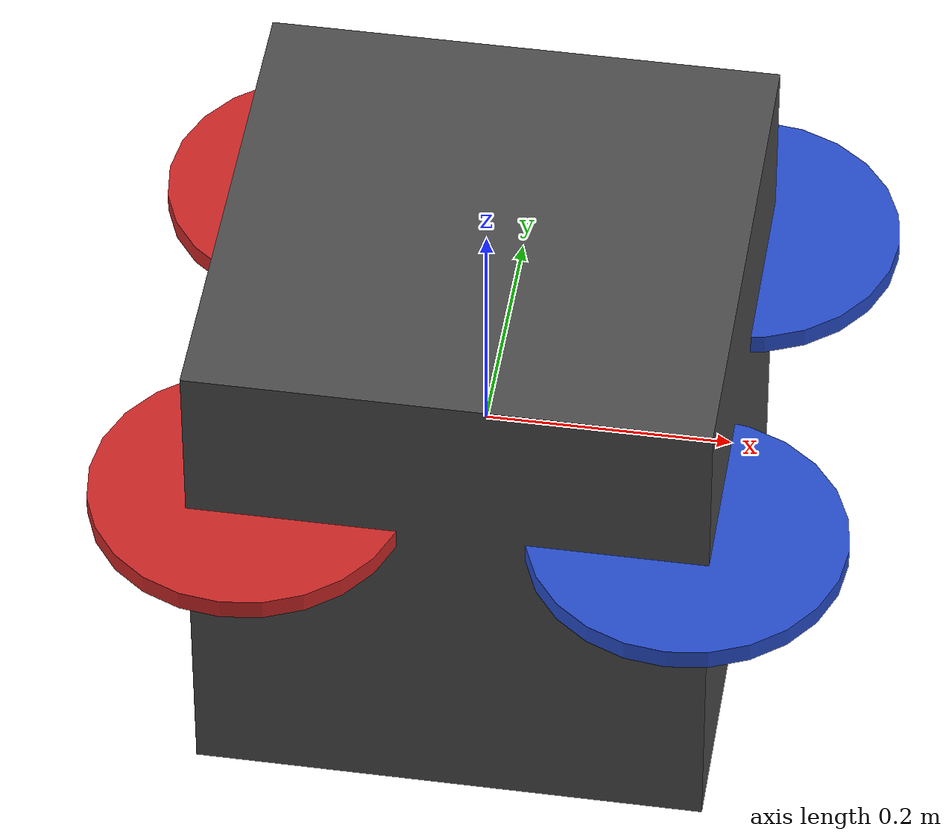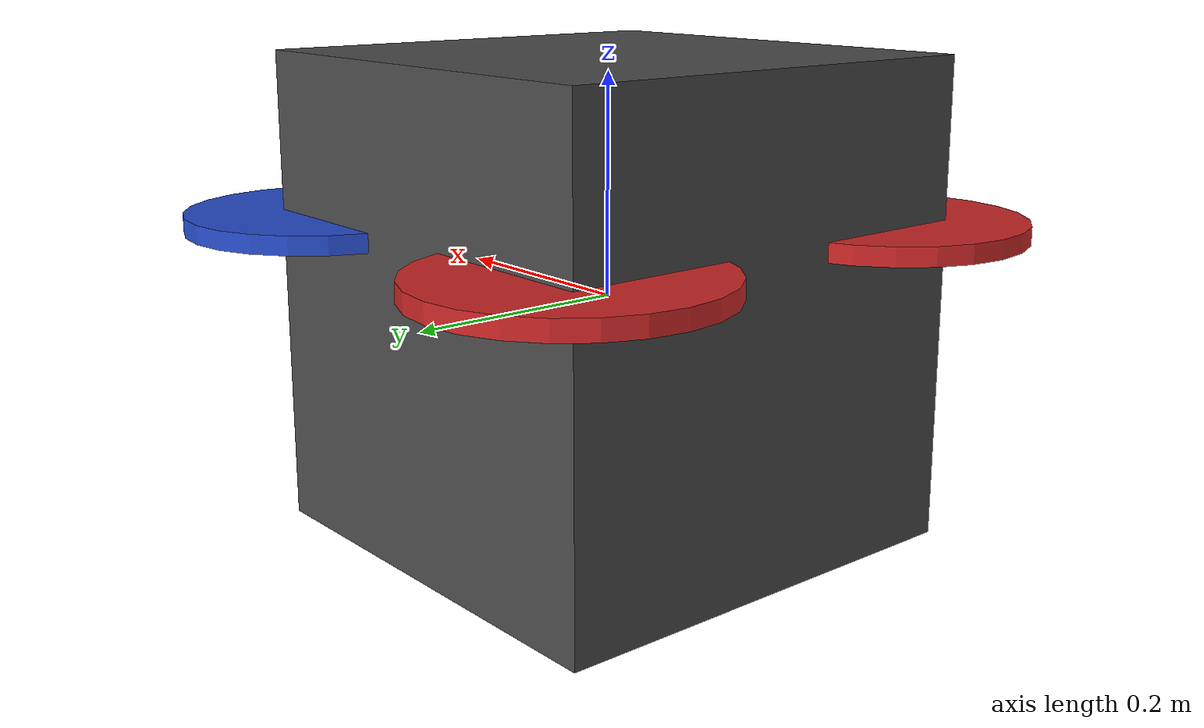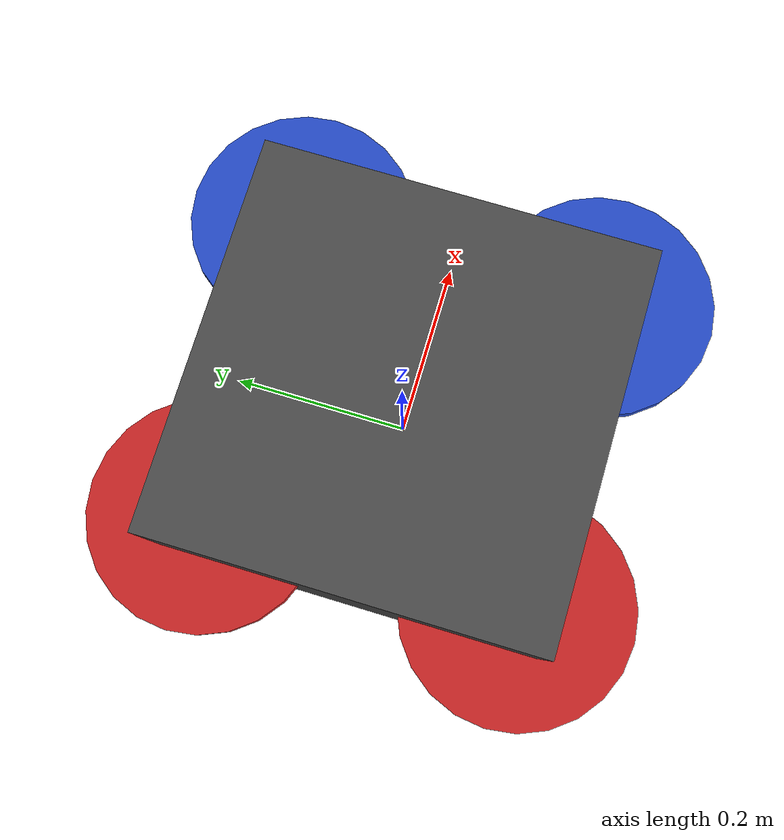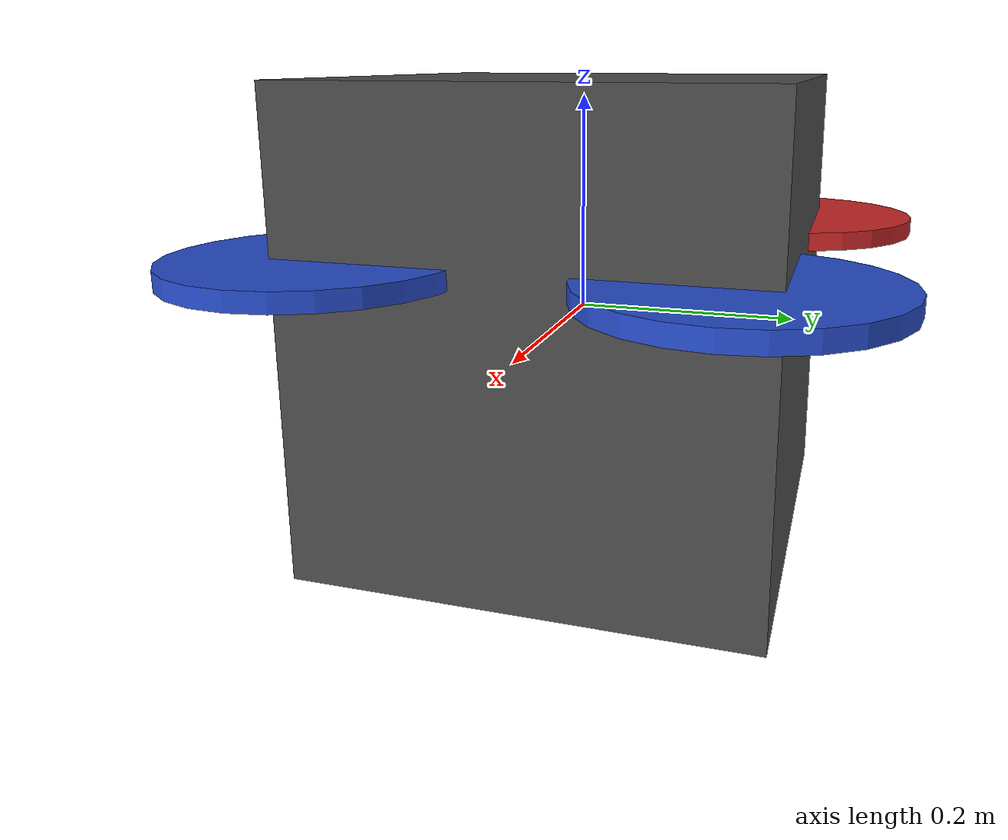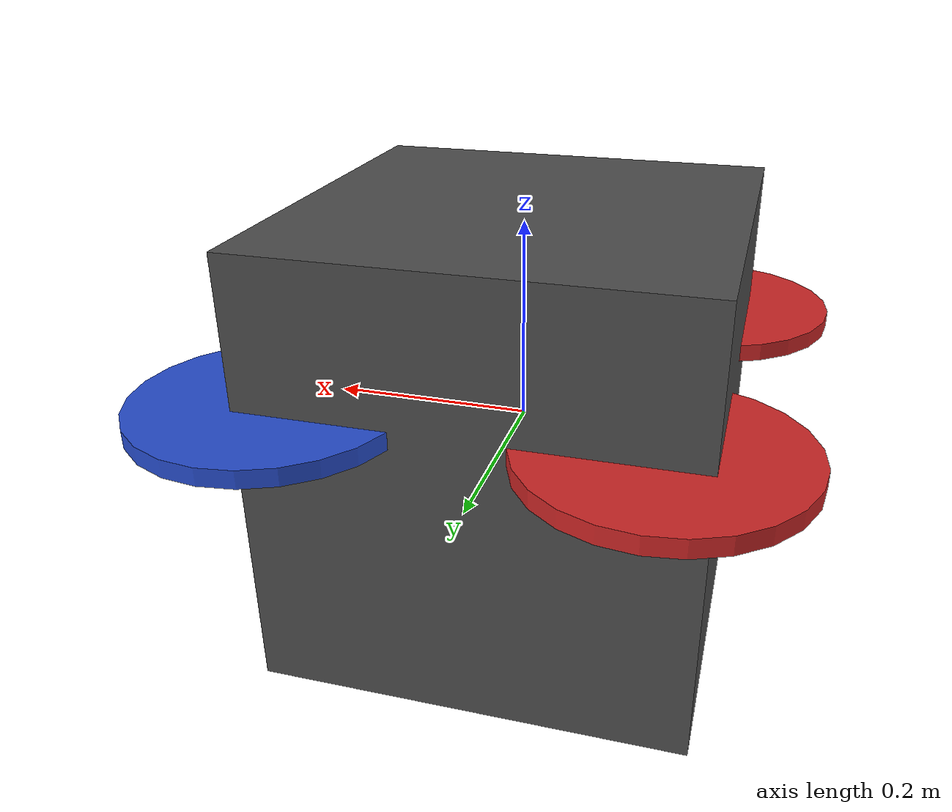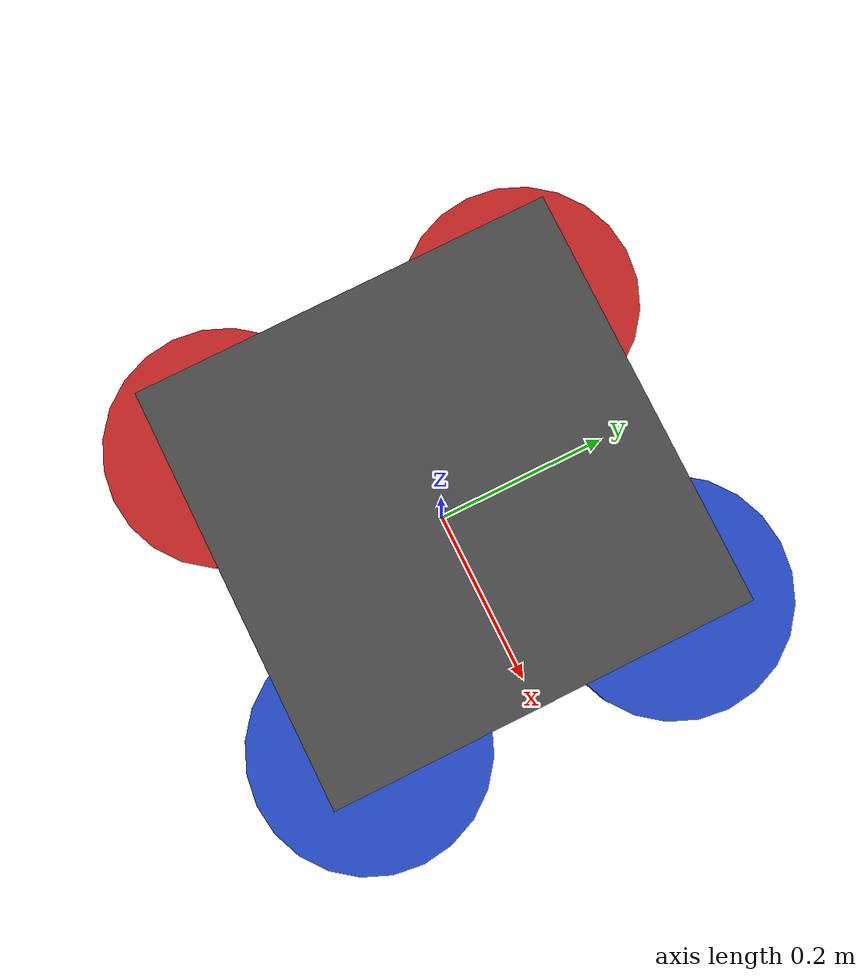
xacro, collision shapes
<?xml version="1.0"?>
<robot xmlns:xacro="http://www.ros.org/wiki/xacro" name="px4_drone">

  <!-- Base Link -->
  <link name="base_link">
    <inertial>
      <origin xyz="0 0 0" rpy="0 0 0"/>
      <mass value="1.449"/>
      <inertia ixx="0.020" ixy="0" ixz="0" iyy="0.02268" iyz="0" izz="0.03254"/>
    </inertial>
    <visual name="base_link_visual">
      <origin xyz="0 0 0" rpy="0 0 0"/>
      <geometry>
        <mesh filename="package://x500_drone_description/meshes/x500.stl" scale="0.001 0.001 0.001"/>
      </geometry>
      <material name="DarkGrey"/>
    </visual>
    <collision name="base_link_collision">
      <origin xyz="0 0 0" rpy="0 0 0"/>
      <geometry>
        <box size="0.416 0.416 0.433"/>
      </geometry>
    </collision>
  </link>

  <!-- IMU Link -->
  <link name="imu_link">
    <inertial>
      <origin xyz="0 0 0" rpy="0 0 0"/>
      <mass value="0.015"/>
      <inertia ixx="1e-05" ixy="0" ixz="0" iyy="1e-05" iyz="0" izz="1e-05"/>
    </inertial>
  </link>

  <!-- IMU Joint -->
  <joint name="imu_joint" type="revolute">
    <parent link="base_link"/>
    <child link="imu_link"/>
    <axis xyz="1 0 0"/>
    <limit lower="0" upper="0" effort="0" velocity="0"/>
  </joint>

  <!-- Rotor 0 -->
  <link name="rotor_0">
    <inertial>
      <origin xyz="0 0 0" rpy="0 0 0"/>
      <mass value="0.012392"/>
      <inertia ixx="8.4951e-7" ixy="4.04347e-7" ixz="0" iyy="0.00004116" iyz="0" izz="0.00004180"/>
    </inertial>
    <visual name="rotor_0_visual">
      <origin xyz="0 0 0" rpy="0 0 0"/>
      <geometry>
        <mesh filename="package://x500_drone_description/meshes/propeller_ccw.dae" scale="0.001 0.001 0.001"/>
      </geometry>
      <material name="Blue"/>
    </visual>
    <collision name="rotor_0_collision">
      <origin xyz="0 0 0" rpy="0 0 0"/>
      <geometry>
        <cylinder length="0.017" radius="0.128"/>
      </geometry>
    </collision>
  </link>

  <joint name="rotor_0_joint" type="continuous">
    <parent link="base_link"/>
    <child link="rotor_0"/>
    <origin xyz="0.186463 -0.17561 0.065374" rpy="0 0 0"/>
    <axis xyz="0 0 1"/>
  </joint>

  <!-- Rotor 1 -->
  <link name="rotor_1">
    <inertial>
      <origin xyz="0 0 0" rpy="0 0 0"/>
      <mass value="0.012392"/>
      <inertia ixx="8.4951e-7" ixy="4.04347e-7" ixz="0" iyy="0.00004116" iyz="0" izz="0.00004180"/>
    </inertial>
    <visual name="rotor_1_visual">
      <origin xyz="0 0 0" rpy="0 0 0"/>
      <geometry>
        <mesh filename="package://x500_drone_description/meshes/propeller_ccw.dae" scale="0.001 0.001 0.001"/>
      </geometry>
      <material name="Red"/>
    </visual>
    <collision name="rotor_1_collision">
      <origin xyz="0 0 0" rpy="0 0 0"/>
      <geometry>
        <cylinder length="0.017" radius="0.128"/>
      </geometry>
    </collision>
  </link>

  <joint name="rotor_1_joint" type="continuous">
    <parent link="base_link"/>
    <child link="rotor_1"/>
    <origin xyz="-0.163577 0.174408 0.065374" rpy="0 0 0"/>
    <axis xyz="0 0 1"/>
  </joint>

  <!-- Rotor 2 -->
  <link name="rotor_2">
    <inertial>
      <origin xyz="0 0 0" rpy="0 0 0"/>
      <mass value="0.012392"/>
      <inertia ixx="8.4951e-7" ixy="-4.04347e-7" ixz="0" iyy="0.00004116" iyz="0" izz="0.00004180"/>
    </inertial>
    <visual name="rotor_2_visual">
      <origin xyz="0 0 0" rpy="0 0 0"/>
      <geometry>
        <mesh filename="package://x500_drone_description/meshes/propeller_cw.dae" scale="0.001 0.001 0.001"/>
      </geometry>
      <material name="Blue"/>
    </visual>
    <collision name="rotor_2_collision">
      <origin xyz="0 0 0" rpy="0 0 0"/>
      <geometry>
        <cylinder length="0.017" radius="0.128"/>
      </geometry>
    </collision>
  </link>

  <joint name="rotor_2_joint" type="continuous">
    <parent link="base_link"/>
    <child link="rotor_2"/>
    <origin xyz="0.186463 0.174408 0.065374" rpy="0 0 0"/>
    <axis xyz="0 0 -1"/>
  </joint>

  <!-- Rotor 3 -->
  <link name="rotor_3">
    <inertial>
      <origin xyz="0 0 0" rpy="0 0 0"/>
      <mass value="0.012392"/>
      <inertia ixx="8.4951e-7" ixy="-4.04347e-7" ixz="0" iyy="0.00004116" iyz="0" izz="0.00004180"/>
    </inertial>
    <visual name="rotor_3_visual">
      <origin xyz="0 0 0" rpy="0 0 0"/>
      <geometry>
        <mesh filename="package://x500_drone_description/meshes/propeller_cw.dae" scale="0.001 0.001 0.001"/>
      </geometry>
      <material name="Red"/>
    </visual>
    <collision name="rotor_3_collision">
      <origin xyz="0 0 0" rpy="0 0 0"/>
      <geometry>
        <cylinder length="0.017" radius="0.128"/>
      </geometry>
    </collision>
  </link>

  <joint name="rotor_3_joint" type="continuous">
    <parent link="base_link"/>
    <child link="rotor_3"/>
    <origin xyz="-0.163577 -0.17561 0.065374" rpy="0 0 0"/>
    <axis xyz="0 0 -1"/>
  </joint>

</robot>
